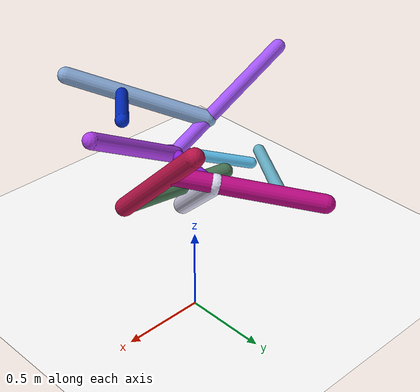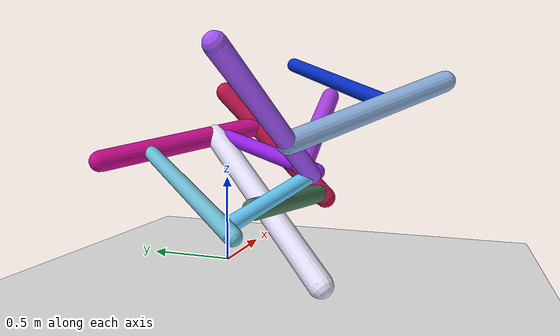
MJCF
<mujoco model="morphology">
  <option timestep="0.01"/>
  <default>
    <default class="/"/>
    <default class="0/"/>
    <default class="0/1/"/>
    <default class="0/1/2/"/>
    <default class="0/1/3/"/>
    <default class="0/1/4/"/>
    <default class="0/1/4/5/"/>
    <default class="0/1/4/6/"/>
    <default class="0/1/4/6/7/"/>
    <default class="0/1/4/6/7/8/"/>
    <default class="0/1/4/6/7/8/9/"/>
    <default class="0/10/"/>
  </default>
  <asset>
    <texture name="texplane" type="2d" builtin="checker" rgb1="0.10000000000000001 0.20000000000000001 0.29999999999999999" rgb2="0.20000000000000001 0.29999999999999999 0.40000000000000002" width="300" height="300"/>
    <material name="MatPlane" class="/" texture="texplane" texrepeat="20 20" specular="1" shininess="1" reflectance="0.5"/>
  </asset>
  <worldbody>
    <light name="//unnamed_light_0" class="/" directional="true" pos="0 0 1.5" dir="0 0 -1.3" cutoff="100" exponent="1" diffuse="1 1 1" specular="0.10000000000000001 0.10000000000000001 0.10000000000000001"/>
    <geom name="ground" class="/" type="plane" size="15 15 0.5" material="MatPlane" rgba="1 1 1 1"/>
    <site name="body" class="/" size="9.9999999999999995e-07 9.9999999999999995e-07 9.9999999999999995e-07" pos="0 0 1.004970407485962"/>
    <body pos="0 0 1.004970407485962" name="0/">
      <freejoint name="0/"/>
      <geom name="0/geom" class="0/" type="capsule" contype="1" conaffinity="1" condim="3" size="0.058036921663783353" rgba="0.72761377954131345 0.073621607710175674 0.2872630886110743 1" friction="0.59999999999999998 0.10000000000000001 0.10000000000000001" fromto="0 0 0 0.025701657748824047 -0.59372854423556476 -0.59631231605042934"/>
      <site name="0/end0" class="0/" size="0.0050000000000000001" pos="0.025701657748824047 -0.59372854423556476 -0.59631231605042934"/>
      <site name="0/attach1" class="0/" size="9.9999999999999995e-07 9.9999999999999995e-07 9.9999999999999995e-07" pos="0.0084454090802776743 -0.19509560385989136 -0.1959446156302555"/>
      <body pos="0.0084454090802776743 -0.19509560385989136 -0.1959446156302555" name="0/1/">
        <joint name="0/1/joint/" class="0/" type="hinge" axis="0 1 0" limited="true" range="-35.643358158002265 35.643358158002265"/>
        <geom name="0/1/geom" class="0/1/" type="capsule" contype="1" conaffinity="1" condim="3" size="0.056203936722809295" rgba="0.76333590705161947 0.037557575976754687 0.53486936685636621 1" friction="0.59999999999999998 0.10000000000000001 0.10000000000000001" fromto="0 0 0 -0.6122517248963244 0.63720490239799621 -0.16835190533315392"/>
        <site name="0/1/end1" class="0/1/" size="0.0050000000000000001" pos="-0.6122517248963244 0.63720490239799621 -0.16835190533315392"/>
        <site name="0/1/attach2" class="0/1/" size="9.9999999999999995e-07 9.9999999999999995e-07 9.9999999999999995e-07" pos="-0.43830115866469704 0.45616473693914061 -0.12052042022980952"/>
        <body pos="-0.43830115866469704 0.45616473693914061 -0.12052042022980952" name="0/1/2/">
          <joint name="0/1/2/joint/" class="0/1/" type="hinge" axis="-0.73265006363088181 -0.65802659017509046 0.17385307269130526" limited="true" range="-45.773661579522091 45.773661579522091"/>
          <geom name="0/1/2/geom" class="0/1/2/" type="capsule" contype="1" conaffinity="1" condim="3" size="0.038318717020029064" rgba="0.43288609087346352 0.74097152432533187 0.83540258994405558 1" friction="0.59999999999999998 0.10000000000000001 0.10000000000000001" fromto="0 0 0 -0.60493052878864861 -0.74039342124975271 -0.26607611802404751"/>
          <site name="0/1/2/end2" class="0/1/2/" size="0.0050000000000000001" pos="-0.60493052878864861 -0.74039342124975271 -0.26607611802404751"/>
        </body>
        <site name="0/1/attach3" class="0/1/" size="9.9999999999999995e-07 9.9999999999999995e-07 9.9999999999999995e-07" pos="-0.17834020651907609 0.18560871169104418 -0.04903851201085422"/>
        <body pos="-0.17834020651907609 0.18560871169104418 -0.04903851201085422" name="0/1/3/">
          <geom name="0/1/3/geom" class="0/1/3/" type="capsule" contype="1" conaffinity="1" condim="3" size="0.061778504975632573" rgba="0.89008109291221638 0.8811285104713471 0.97762198431663905 1" friction="0.59999999999999998 0.10000000000000001 0.10000000000000001" fromto="0 0 0 -0.38685893681525368 -0.70039673845547867 -0.65998727256494516"/>
          <site name="0/1/3/end3" class="0/1/3/" size="0.0050000000000000001" pos="-0.38685893681525368 -0.70039673845547867 -0.65998727256494516"/>
        </body>
        <site name="0/1/attach4" class="0/1/" size="9.9999999999999995e-07 9.9999999999999995e-07 9.9999999999999995e-07" pos="-0.1573207035138397 0.16373252936885624 -0.043258743271637153"/>
        <body pos="-0.1573207035138397 0.16373252936885624 -0.043258743271637153" name="0/1/4/">
          <joint name="0/1/4/joint/" class="0/1/" type="hinge" axis="-1.3877787807814457e-17 0.25543881974148164 0.96682522172783569" limited="true" range="-48.135447302039516 48.135447302039516"/>
          <geom name="0/1/4/geom" class="0/1/4/" type="capsule" contype="1" conaffinity="1" condim="3" size="0.040111694450135515" rgba="0.58474411827669392 0.12261603149549816 0.89787389158320652 1" friction="0.59999999999999998 0.10000000000000001 0.10000000000000001" fromto="0 0 0 -0.25273422629201237 -0.61590559634207831 -0.15967238745306989"/>
          <site name="0/1/4/end4" class="0/1/4/" size="0.0050000000000000001" pos="-0.25273422629201237 -0.61590559634207831 -0.15967238745306989"/>
          <site name="0/1/4/attach5" class="0/1/4/" size="9.9999999999999995e-07 9.9999999999999995e-07 9.9999999999999995e-07" pos="-0.21952682374020238 -0.5349801697715878 -0.13869262019180345"/>
          <body pos="-0.21952682374020238 -0.5349801697715878 -0.13869262019180345" name="0/1/4/5/">
            <joint name="0/1/4/5/joint/" class="0/1/4/" type="hinge" axis="0.92936669516384485 -0.35734465428557644 -0.092640941131633125" limited="true" range="-52.116633500709014 52.116633500709014"/>
            <geom name="0/1/4/5/geom" class="0/1/4/5/" type="capsule" contype="1" conaffinity="1" condim="3" size="0.051118967148691005" rgba="0.68003229996124404 0.24624186347052657 0.91397016581678703 1" friction="0.59999999999999998 0.10000000000000001 0.10000000000000001" fromto="0 0 0 0.63113845527274237 0.0018350711746032422 0.35341846645544939"/>
            <site name="0/1/4/5/end5" class="0/1/4/5/" size="0.0050000000000000001" pos="0.63113845527274237 0.0018350711746032422 0.35341846645544939"/>
          </body>
          <site name="0/1/4/attach6" class="0/1/4/" size="9.9999999999999995e-07 9.9999999999999995e-07 9.9999999999999995e-07" pos="-0.25258862238672564 -0.61555076406854314 -0.15958039784200406"/>
          <body pos="-0.25258862238672564 -0.61555076406854314 -0.15958039784200406" name="0/1/4/6/">
            <geom name="0/1/4/6/geom" class="0/1/4/6/" type="capsule" contype="1" conaffinity="1" condim="3" size="0.036295003490517459" rgba="0.39506542487612628 0.80558012759766517 0.99266612600959003 1" friction="0.59999999999999998 0.10000000000000001 0.10000000000000001" fromto="0 0 0 -0.47215848620436651 0.2489902632598473 -0.17770354642707753"/>
            <site name="0/1/4/6/end6" class="0/1/4/6/" size="0.0050000000000000001" pos="-0.47215848620436651 0.2489902632598473 -0.17770354642707753"/>
            <site name="0/1/4/6/attach7" class="0/1/4/6/" size="9.9999999999999995e-07 9.9999999999999995e-07 9.9999999999999995e-07" pos="-0.032153146120114676 0.016955790377586256 -0.012101292810099588"/>
            <body pos="-0.032153146120114676 0.016955790377586256 -0.012101292810099588" name="0/1/4/6/7/">
              <joint name="0/1/4/6/7/joint/" class="0/1/4/6/" type="hinge" axis="2.7755575615628914e-17 0.58092072358757052 0.81396014208712564" limited="true" range="-46.3340859537185 46.3340859537185"/>
              <geom name="0/1/4/6/7/geom" class="0/1/4/6/7/" type="capsule" contype="1" conaffinity="1" condim="3" size="0.045497475948210034" rgba="0.63919156629117524 0.3360392975776183 0.98546313448492806 1" friction="0.59999999999999998 0.10000000000000001 0.10000000000000001" fromto="0 0 0 -0.74660499793641755 0.14901620185080688 0.53070742812083993"/>
              <site name="0/1/4/6/7/end7" class="0/1/4/6/7/" size="0.0050000000000000001" pos="-0.74660499793641755 0.14901620185080688 0.53070742812083993"/>
              <site name="0/1/4/6/7/attach8" class="0/1/4/6/7/" size="9.9999999999999995e-07 9.9999999999999995e-07 9.9999999999999995e-07" pos="-0.23053672584361387 0.046013229709536085 0.16387186423614442"/>
              <body pos="-0.23053672584361387 0.046013229709536085 0.16387186423614442" name="0/1/4/6/7/8/">
                <joint name="0/1/4/6/7/8/joint/" class="0/1/4/6/7/" type="hinge" axis="-0.59396803765539774 -0.21748001392203459 -0.77453496614953932" limited="true" range="-53.480692316456931 53.480692316456931"/>
                <geom name="0/1/4/6/7/8/geom" class="0/1/4/6/7/8/" type="capsule" contype="1" conaffinity="1" condim="3" size="0.053021568558049417" rgba="0.53349218575085966 0.66755543944091456 0.84364303168432764 1" friction="0.59999999999999998 0.10000000000000001 0.10000000000000001" fromto="0 0 0 0.60417075422947963 -0.63053506109326118 0.28540753471270897"/>
                <site name="0/1/4/6/7/8/end8" class="0/1/4/6/7/8/" size="0.0050000000000000001" pos="0.60417075422947963 -0.63053506109326118 0.28540753471270897"/>
                <site name="0/1/4/6/7/8/attach9" class="0/1/4/6/7/8/" size="9.9999999999999995e-07 9.9999999999999995e-07 9.9999999999999995e-07" pos="0.36937980672902565 -0.38549849917766649 0.17449335187638931"/>
                <body pos="0.36937980672902565 -0.38549849917766649 0.17449335187638931" name="0/1/4/6/7/8/9/">
                  <joint name="0/1/4/6/7/8/9/joint/" class="0/1/4/6/7/8/" type="hinge" axis="0 0.41236633767618147 0.91101811373404296" limited="true" range="-68.154724994826324 68.154724994826324"/>
                  <geom name="0/1/4/6/7/8/9/geom" class="0/1/4/6/7/8/9/" type="capsule" contype="1" conaffinity="1" condim="3" size="0.038912401774069134" rgba="0.013341468733656825 0.17946631294570725 0.78068858833267829 1" friction="0.59999999999999998 0.10000000000000001 0.10000000000000001" fromto="0 0 0 0.49600143054533041 0.61499444018546234 0.23750888264524095"/>
                  <site name="0/1/4/6/7/8/9/end9" class="0/1/4/6/7/8/9/" size="0.0050000000000000001" pos="0.49600143054533041 0.61499444018546234 0.23750888264524095"/>
                </body>
              </body>
            </body>
          </body>
        </body>
      </body>
      <site name="0/attach10" class="0/" size="9.9999999999999995e-07 9.9999999999999995e-07 9.9999999999999995e-07" pos="0.02464867100626664 -0.56940372083826607 -0.57188163654480362"/>
      <body pos="0.02464867100626664 -0.56940372083826607 -0.57188163654480362" name="0/10/">
        <geom name="0/10/geom" class="0/10/" type="capsule" contype="1" conaffinity="1" condim="3" size="0.051754335904642165" rgba="0.28673324165228253 0.47032856515640986 0.33845202483515247 1" friction="0.59999999999999998 0.10000000000000001 0.10000000000000001" fromto="0 0 0 -0.67608529600430678 0.1538359173111139 0.019793106126805515"/>
        <site name="0/10/end10" class="0/10/" size="0.0050000000000000001" pos="-0.67608529600430678 0.1538359173111139 0.019793106126805515"/>
      </body>
      <camera name="0/iso" class="0/" mode="trackcom" pos="-2.2999999999999998 -2.2999999999999998 1" xyaxes="0.45000000000000001 -0.45000000000000001 0 0.29999999999999999 0.14999999999999999 0.93999999999999995"/>
    </body>
  </worldbody>
  <actuator>
    <motor name="0/1/motor" class="0/1/" ctrllimited="true" ctrlrange="-1 1" gear="87" joint="0/1/joint/"/>
    <motor name="0/1/2/motor" class="0/1/2/" ctrllimited="true" ctrlrange="-1 1" gear="69" joint="0/1/2/joint/"/>
    <motor name="0/1/4/motor" class="0/1/4/" ctrllimited="true" ctrlrange="-1 1" gear="72" joint="0/1/4/joint/"/>
    <motor name="0/1/4/5/motor" class="0/1/4/5/" ctrllimited="true" ctrlrange="-1 1" gear="69" joint="0/1/4/5/joint/"/>
    <motor name="0/1/4/6/7/motor" class="0/1/4/6/7/" ctrllimited="true" ctrlrange="-1 1" gear="96" joint="0/1/4/6/7/joint/"/>
    <motor name="0/1/4/6/7/8/motor" class="0/1/4/6/7/8/" ctrllimited="true" ctrlrange="-1 1" gear="83" joint="0/1/4/6/7/8/joint/"/>
    <motor name="0/1/4/6/7/8/9/motor" class="0/1/4/6/7/8/9/" ctrllimited="true" ctrlrange="-1 1" gear="89" joint="0/1/4/6/7/8/9/joint/"/>
  </actuator>
  <sensor>
    <subtreelinvel name="velocity" body="0/"/>
  </sensor>
</mujoco>
